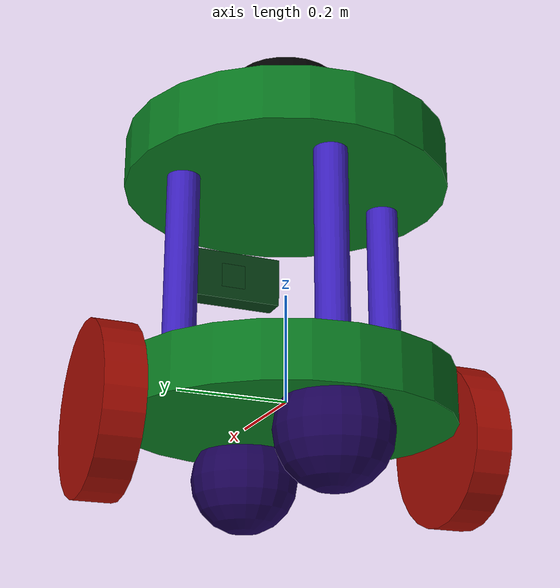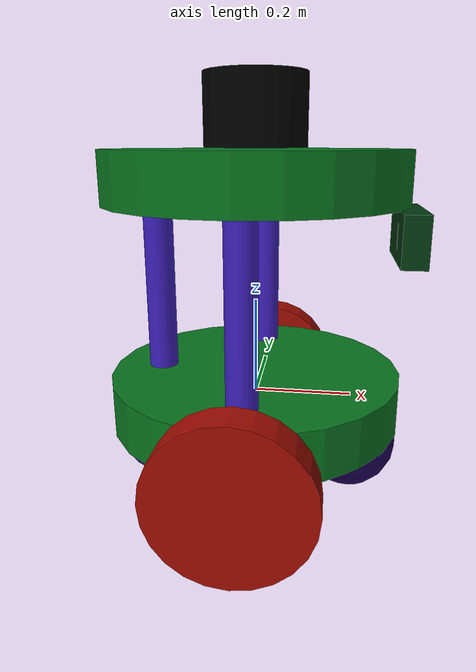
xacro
<?xml version='1.0' encoding='utf-8'?>
    <robot name="beetlebot" xmlns:xacro="http://www.ros.org/wiki/xacro">

        <xacro:include filename="$(find beetlebot_description)/urdf/beetlebot.gazebo" />
        <xacro:include filename="$(find beetlebot_description)/urdf/beetlebot_ros2_control.xacro" />

        <link name="beetlebot">
            <pose relative_to='__model__'>0 0 0.0 0 0 0</pose>
            <inertial>
                <origin xyz="0 0 0.3" rpy="0 0 0"/>
                <mass value="5"/>
                <inertia ixx="1.5417" ixy="0" ixz="0" iyy="3.467" iyz="0" izz="4.742"/>
            </inertial>
        </link>

        <joint name="footprint_to_base" type="fixed">
            <parent link= "beetlebot"/>
            <child link="base_link"/>
        </joint>

    <!-- Base Link -->
    <link name="base_link">
        <visual>
            <origin xyz="0 0 0" rpy="0 0 0"/>
            <geometry>
                <cylinder radius="0.3" length="0.1"/>
            </geometry>
            <material name="base_link_material">
                <color rgba="0.033104766565152086 0.46778379610254284 0.12477181755144427 1"/>
            </material>
        </visual>
        <collision>
            <origin xyz="0 0 0" rpy="0 0 0"/>
            <geometry>
                <cylinder radius="0.3" length="0.1"/>
            </geometry>
        </collision>
        <inertial>
            <origin xyz="0 0 0.3" rpy="0 0 0"/>
            <mass value="5"/>
            <inertia ixx="1.5417" ixy="0" ixz="0" iyy="3.467" iyz="0" izz="4.742"/>
        </inertial>
    </link>

    <!-- Right Wheel Link -->
    <link name="wheel_right">
        <visual>
            <origin xyz="0 0 0" rpy="0 0 0"/>
            <geometry>
                <cylinder radius="0.15" length="0.07"/>
            </geometry>
            <material name="wheel_right_material">
                <color rgba="0.6375968739867731 0.04373502925049377 0.008023192982520563 1"/>
            </material>
        </visual>
        <collision>
            <origin xyz="0 0 0" rpy="0 0 0"/>
            <geometry>
                <cylinder radius="0.15" length="0.07"/>
            </geometry>
        </collision>
        <inertial>
            <origin xyz="0 0 0" rpy="0 0 0"/>
            <mass value="1"/>
            <inertia ixx="0.002526666666667" ixy="0" ixz="0" iyy="0.002526666666667" iyz="0" izz="0.005"/>
        </inertial>
    </link>

    <!-- Right Wheel Joint -->
    <joint name="base_link_to_wheel_right" type="continuous">
        <parent link="base_link"/>
        <child link="wheel_right"/>
        <origin xyz="0 -0.33 -0.05" rpy="1.5707963267948963 0 0"/>
        <axis xyz="0 0 -1"/>
    </joint>

    <!-- Left Wheel Link -->
    <link name="wheel_left">
        <visual>
            <origin xyz="0 0 0" rpy="0 0 0"/>
            <geometry>
                <cylinder radius="0.15" length="0.07"/>
            </geometry>
            <material name="wheel_left_material">
                <color rgba="0.6375968739867731 0.04373502925049377 0.008023192982520563 1"/>
            </material>
        </visual>
        <collision>
            <origin xyz="0 0 0" rpy="0 0 0"/>
            <geometry>
                <cylinder radius="0.15" length="0.07"/>
            </geometry>
        </collision>
        <inertial>
            <origin xyz="0 0 0" rpy="0 0 0"/>
            <mass value="1"/>
            <inertia ixx="0.002526666666667" ixy="0" ixz="0" iyy="0.002526666666667" iyz="0" izz="0.005"/>
        </inertial>
    </link>

    <!-- Left Wheel Joint -->
    <joint name="base_link_to_wheel_left" type="continuous">
        <parent link="base_link"/>
        <child link="wheel_left"/>
        <origin xyz="0 0.33 -0.05" rpy="1.5707963267948963 0 0"/>
        <axis xyz="0 0 -1"/>
    </joint>

    <!-- Top Base Link -->
    <link name="top_base">
        <visual>
            <origin xyz="0 0 0" rpy="0 0 0"/>
            <geometry>
                <cylinder radius="0.3" length="0.1"/>
            </geometry>
            <material name="top_base_material">
                <color rgba="0.033104766565152086 0.46778379610254284 0.12477181755144427 1"/>
            </material>
        </visual>
        <collision>
            <origin xyz="0 0 0" rpy="0 0 0"/>
            <geometry>
                <cylinder radius="0.3" length="0.1"/>
            </geometry>
        </collision>
        <inertial>
            <origin xyz="0 0 0" rpy="0 0 0"/>
            <mass value="1"/>
            <inertia ixx="0.002526666666667" ixy="0" ixz="0" iyy="0.002526666666667" iyz="0" izz="0.005"/>
        </inertial>
    </link>

    <!-- Top Base Joint -->
    <joint name="base_link_to_top_base" type="fixed">
        <parent link="base_link"/>
        <child link="top_base"/>
        <origin xyz="0 0 0.45" rpy="0 0 0"/>
    </joint>

    <!-- Front Caster Link -->
    <link name="front_caster">
        <visual>
            <origin xyz="0 0 0" rpy="0 0 0"/>
            <geometry>
                <sphere radius="0.1"/>
            </geometry>
            <material name="front_caster_material">
                <color rgba="0.10702310296918527 0.0069954101845983935 0.3371636150376657 1"/>
            </material>
        </visual>
        <collision>
            <origin xyz="0 0 0" rpy="0 0 0"/>
            <geometry>
                <sphere radius="0.1"/>
            </geometry>
        </collision>
        <inertial>
            <origin xyz="0 0 0" rpy="0 0 0"/>
            <mass value="1"/>
            <inertia ixx="0.002526666666667" ixy="0" ixz="0" iyy="0.002526666666667" iyz="0" izz="0.005"/>
        </inertial>
    </link>

    <!-- Front Caster Joint -->
    <joint name="base_link_to_front_caster" type="fixed">
        <parent link="base_link"/>
        <child link="front_caster"/>
        <origin xyz="0.2 0 -0.1" rpy="0 0 0"/>
        <axis xyz="0 1 0"/>
    </joint>

    <!-- Rear Caster Link -->
    <link name="rear_caster">
        <visual>
            <origin xyz="0 0 0" rpy="0 0 0"/>
            <geometry>
                <sphere radius="0.1"/>
            </geometry>
            <material name="rear_caster_material">
                <color rgba="0.10702310296918527 0.0069954101845983935 0.3371636150376657 1"/>
            </material>
        </visual>
        <collision>
            <origin xyz="0 0 0" rpy="0 0 0"/>
            <geometry>
                <sphere radius="0.1"/>
            </geometry>
        </collision>
        <inertial>
            <origin xyz="0 0 0" rpy="0 0 0"/>
            <mass value="1"/>
            <inertia ixx="0.4" ixy="0" ixz="0" iyy="0.4" iyz="0" izz="0.4"/>
        </inertial>
    </link>

    <!-- Rear Caster Joint -->
    <joint name="base_link_to_rear_caster" type="fixed">
        <parent link="base_link"/>
        <child link="rear_caster"/>
        <origin xyz="-0.2 0 -0.1" rpy="0 0 0"/>
        <axis xyz="0 1 0"/>
    </joint>

    <!-- Right Bar Link -->
    <link name="right_bar">
        <visual>
            <origin xyz="0 0 0" rpy="0 0 0"/>
            <geometry>
                <cylinder radius="0.03" length="0.5"/>
            </geometry>
            <material name="right_bar_material">
                <color rgba="0.23839757380151394 0.12743768042608497 0.7529422167708612 1"/>
            </material>
        </visual>
        <collision>
            <origin xyz="0 0 0" rpy="0 0 0"/>
            <geometry>
                <cylinder radius="0.03" length="0.5"/>
            </geometry>
        </collision>
        <inertial>
            <origin xyz="0 0 0" rpy="0 0 0"/>
            <mass value="1"/>
            <inertia ixx="0.3333333333333333" ixy="0" ixz="0" iyy="0.5" iyz="0" izz="0.3333333333333333"/>
        </inertial>
    </link>

    <!-- Right Bar Joint -->
    <joint name="base_link_to_right_bar" type="fixed">
        <parent link="base_link"/>
        <child link="right_bar"/>
        <origin xyz="0 0.2 0.2058808723746403" rpy="0 0 0"/>
    </joint>

    <!-- Left Bar Link -->
    <link name="left_bar">
        <visual>
            <origin xyz="0 0 0" rpy="0 0 0"/>
            <geometry>
                <cylinder radius="0.03" length="0.5"/>
            </geometry>
            <material name="left_bar_material">
                <color rgba="0.23839757380151394 0.12743768042608497 0.7529422167708612 1"/>
            </material>
        </visual>
        <collision>
            <origin xyz="0 0 0" rpy="0 0 0"/>
            <geometry>
                <cylinder radius="0.03" length="0.5"/>
            </geometry>
        </collision>
        <inertial>
            <origin xyz="0 0 0" rpy="0 0 0"/>
            <mass value="1"/>
            <inertia ixx="0.3333333333333333" ixy="0" ixz="0" iyy="0.5" iyz="0" izz="0.3333333333333333"/>
        </inertial>
    </link>

    <!-- Left Bar Joint -->
    <joint name="base_link_to_left_bar" type="fixed">
        <parent link="base_link"/>
        <child link="left_bar"/>
        <origin xyz="0 -0.2 0.2058808723746403" rpy="0 0 0"/>
    </joint>

    <!-- Rear Bar Link -->
    <link name="rear_bar">
        <visual>
            <origin xyz="0 0 0" rpy="0 0 0"/>
            <geometry>
                <cylinder radius="0.03" length="0.5"/>
            </geometry>
            <material name="rear_bar_material">
                <color rgba="0.23839757380151394 0.12743768042608497 0.7529422167708612 1"/>
            </material>
        </visual>
        <collision>
            <origin xyz="0 0 0" rpy="0 0 0"/>
            <geometry>
                <cylinder radius="0.03" length="0.5"/>
            </geometry>
        </collision>
        <inertial>
            <origin xyz="0 0 0" rpy="0 0 0"/>
            <mass value="1"/>
            <inertia ixx="0.3333333333333333" ixy="0" ixz="0" iyy="0.5" iyz="0" izz="0.3333333333333333"/>
        </inertial>
    </link>

    <!-- Rear Bar Joint -->
    <joint name="base_link_to_rear_bar" type="fixed">
        <parent link="base_link"/>
        <child link="rear_bar"/>
        <origin xyz="-0.2 0 0.2058808723746403" rpy="0 0 0"/>
    </joint>

    <!-- Lidar Link -->
    <link name="lidar">
        <visual>
            <origin xyz="0 0 0" rpy="0 0 0"/>
            <geometry>
                <cylinder radius="0.1" length="0.13538975482266932"/>
            </geometry>
            <material name="lidar_material">
                <color rgba="0 0 0 1"/>
            </material>
        </visual>
        <collision>
            <origin xyz="0 0 0" rpy="0 0 0"/>
            <geometry>
                <cylinder radius="0.1" length="0.13538975482266932"/>
            </geometry>
        </collision>
        <inertial>
            <origin xyz="0 0 0" rpy="0 0 0"/>
            <mass value="1"/>
            <inertia ixx="0.3333333333333333" ixy="0" ixz="0" iyy="0.5" iyz="0" izz="0.3333333333333333"/>
        </inertial>
    </link>

    <!-- Lidar Joint -->
    <joint name="base_link_to_lidar" type="fixed">
        <parent link="base_link"/>
        <child link="lidar"/>
        <origin xyz="0 0 0.57" rpy="0 0 0"/>
    </joint>

    <!-- Camera Link -->
    <link name="camera">
        <visual>
            <origin xyz="0 0 0" rpy="0 0 0"/>
            <geometry>
                <box size="0.05 0.2 0.1"/>
            </geometry>
            <material name="camera_material">
                <color rgba="0.015996293361446288 0.22696587349938613 0.07036009568874305 1"/>
            </material>
        </visual>
        <collision>
            <origin xyz="0 0 0" rpy="0 0 0"/>
            <geometry>
                <box size="0.05 0.2 0.1"/>
            </geometry>
        </collision>
        <inertial>
            <origin xyz="0 0 0" rpy="0 0 0"/>
            <mass value="1"/>
            <inertia ixx="0.16666666666666666" ixy="0" ixz="0" iyy="0.16666666666666666" iyz="0" izz="0.16666666666666666"/>
        </inertial>
    </link>

    <!-- Camera Joint -->
    <joint name="base_link_to_camera" type="revolute">
        <parent link="base_link"/>
        <child link="camera"/>
        <origin xyz="0.3 0 0.34" rpy="0 0 0"/>
        <axis xyz="0 1 0"/>

        <limit lower="-1.14" upper="1.14" velocity="3.14" effort="10.0"/>
    </joint>

    <!-- IMU Link -->
    <link name="imu_link">
        <visual>
            <origin xyz="0 0 0" rpy="0 0 0"/>
            <geometry>
                <box size="0.05 0.05 0.05"/>
            </geometry>
            <material name="camera_material">
                <color rgba="0.015996293361446288 0.22696587349938613 0.07036009568874305 1"/>
            </material>
        </visual>
        <collision>
            <origin xyz="0 0 0" rpy="0 0 0"/>
            <geometry>
                <box size="0.05 0.05 0.05"/>
            </geometry>
        </collision>
        <inertial>
            <origin xyz="0 0 0" rpy="0 0 0"/>
            <mass value="1"/>
            <inertia ixx="0.16666666666666666" ixy="0" ixz="0" iyy="0.16666666666666666" iyz="0" izz="0.16666666666666666"/>
        </inertial>
    </link>

    <!-- IMU Joint -->
    <joint name="imu_joint" type="fixed">
        <parent link="base_link"/>
        <child link="imu_link"/>
        <origin xyz="0.3 0 0.34" rpy="0 0 0"/>
    </joint>

    </robot>
